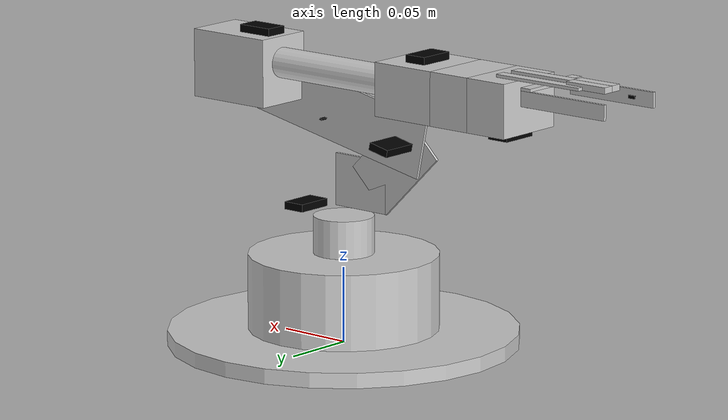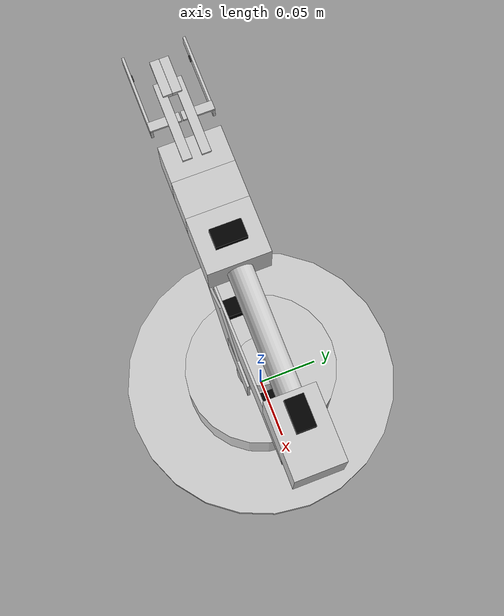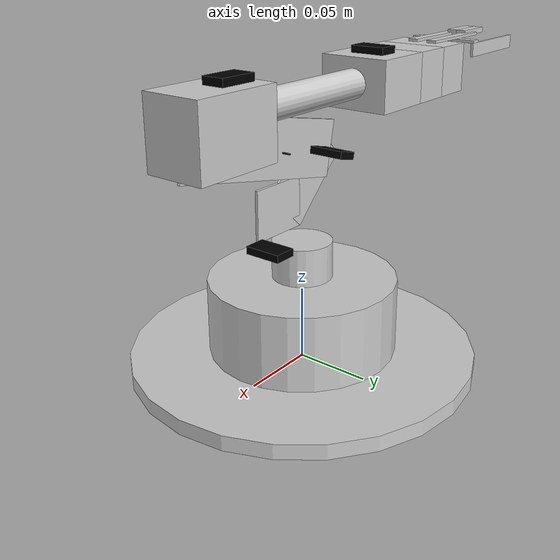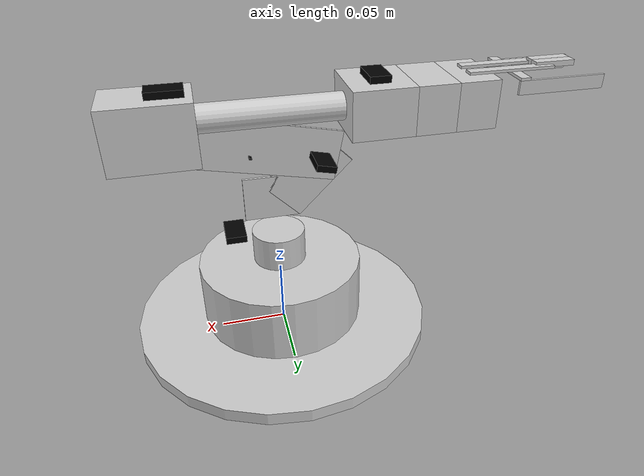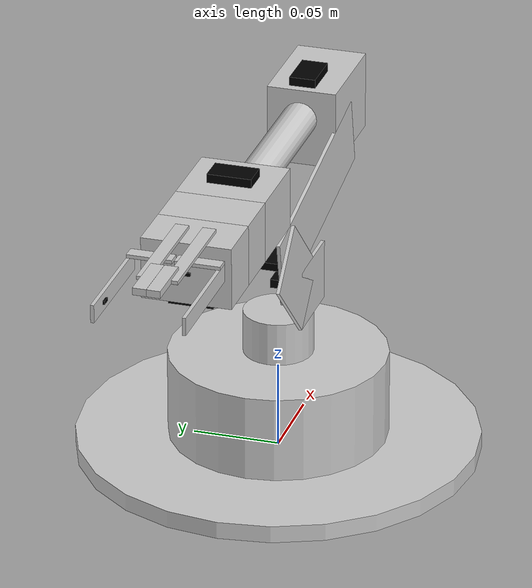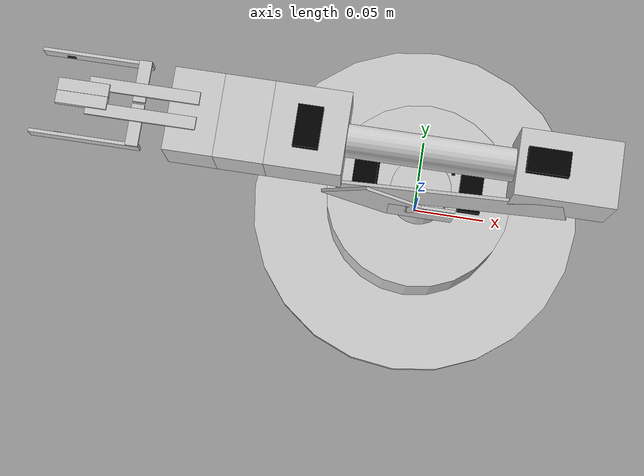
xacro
<?xml version="1.0" ?>
<!-- |    This document was autogenerated by xacro from /home/nastya/catkin_ws/src/digital_twin/description/urdf/for_assistant.xacro | -->
<!-- |    EDITING THIS FILE BY HAND IS NOT RECOMMENDED                                 | -->
<robot name="robot">
    <!-- добавление цветов -->
    <material name="grey">
        <color rgba="0.5 0.5 0.5 1" />
    </material>
    <material name="white">
        <color rgba="1 1 1 1" />
    </material>
    <material name="light_grey">
        <color rgba="0.8 0.8 0.8 1" />
    </material>
    <material name="black">
        <color rgba="0 0 0 1" />
    </material>
    <link name="world" />
    <!-- прикрепление неподвижного основания робота к миру-->
    <joint name="fixed" type="fixed">
        <parent link="world" />
        <child link="base1_link" />
    </joint>
    <!-- base1_link — неподвижное звено основания, находится дальше от link1 -->
    <link name="base1_link">
        <collision>
            <origin rpy="0 0 0" xyz="0 0 0.005" />
            <geometry>
                <cylinder length="0.01" radius="0.115" />
            </geometry>
        </collision>
        <visual>
            <origin rpy="0 0 0" xyz="0 0 0.005" />
            <geometry>
                <cylinder length="0.01" radius="0.115" />
            </geometry>
            <material name="light_grey" />
        </visual>

<inertial>
            <mass value="4" />
            <inertia ixx="1.0" ixy="0.0" ixz="0.0" iyy="1.0" iyz="0.0" izz="1.0" />
        </inertial>

    </link>
    <!-- base2_link — неподвижное звено основания, находится ближе к link1 -->
    <link name="base2_link">
        <collision>
            <geometry>
                <cylinder length="0.05" radius="0.0625" />
            </geometry>
        </collision>
        <visual>
            <geometry>
                <cylinder length="0.05" radius="0.0625" />
            </geometry>
            <material name="light_grey" />
        </visual>

<inertial>
            <mass value="2" />
            <inertia ixx="1.0" ixy="0.0" ixz="0.0" iyy="1.0" iyz="0.0" izz="1.0" />
        </inertial>

    </link>
    <!-- base1_to_base2 — фиксированное соединение -->
    <joint name="base1_to_base2" type="fixed">
        <parent link="base1_link" />
        <child link="base2_link" />
        <origin rpy="0 0 0" xyz="0 0 0.035" />
    </joint>
    <!-- link1 — звено, которое осуществляет поворот основания манипулятора влево/вправо -->
    <link name="link1">
        <collision>
            <geometry>
                <cylinder length="0.025" radius="0.02" />
            </geometry>
        </collision>
        <visual>
            <geometry>
                <cylinder length="0.025" radius="0.02" />
            </geometry>
            <material name="light_grey" />
        </visual>

<inertial>
            <mass value="1e-05" />
            <inertia ixx="1.0" ixy="0.0" ixz="0.0" iyy="1.0" iyz="0.0" izz="1.0" />
        </inertial>

    </link>
    <!-- base2_to_link1 — подвижное соединение -->
    <joint name="base2_to_link1" type="revolute">
        <parent link="base2_link" />
        <child link="link1" />
        <origin rpy="0 0 0" xyz="0 0 0.037500000000000006" />
        <axis xyz="0 0 1" />
        <limit effort="0.245166" lower="-1.57" upper="1.57" velocity="3.15" />
        <dynamics damping="0.0" friction="0.0" />
    </joint>
    <!-- imu_block1 — внешняя часть imu-датчика, которая находится рядом с link1 -->
    <link name="imu_block1">
        <collision>
            <origin rpy="0 0 0" xyz="0 0 0" />
            <geometry>
                <box size="0.015 0.025 0.005" />
            </geometry>
        </collision>
        <visual>
            <origin rpy="0 0 0" xyz="0 0 0" />
            <geometry>
                <box size="0.015 0.025 0.005" />
            </geometry>
            <material name="black" />
        </visual>

<inertial>
            <mass value="1e-05" />
            <inertia ixx="1.0" ixy="0.0" ixz="0.0" iyy="1.0" iyz="0.0" izz="1.0" />
        </inertial>

    </link>
    <!-- link1_to_imu_block1 — фиксированное соединение -->
    <joint name="link1_to_imu_block1" type="fixed">
        <parent link="link1" />
        <child link="imu_block1" />
        <origin rpy="0 0 0" xyz="0.0325 0 0.015000000000000001" />
    </joint>
    <!-- for_link2_1 — неподвижное звено, которое находится ближе к link1-->
    <link name="for_link2_1">
        <collision>
            <geometry>
                <box size="0.0425 0.002 0.035" />
            </geometry>
        </collision>
        <visual>
            <geometry>
                <box size="0.0425 0.002 0.035" />
            </geometry>
            <material name="light_grey" />
        </visual>

<inertial>
            <mass value="1e-05" />
            <inertia ixx="1.0" ixy="0.0" ixz="0.0" iyy="1.0" iyz="0.0" izz="1.0" />
        </inertial>

    </link>
    <!-- link1_to_for_link2_1 — фиксированное соединение -->
    <joint name="link1_to_for_link2_1" type="fixed">
        <parent link="link1" />
        <child link="for_link2_1" />
        <origin rpy="0 0 0" xyz="0.00125 -0.019 0.030000000000000002" />
    </joint>
    <!-- for_link2_2 — неподвижное звено, которое находится ближе к link2 -->
    <link name="for_link2_2">
        <collision>
            <geometry>
                <box size="0.06 0.002 0.04" />
            </geometry>
        </collision>
        <visual>
            <geometry>
                <box size="0.06 0.002 0.04" />
            </geometry>
            <material name="light_grey" />
        </visual>

<inertial>
            <mass value="1e-05" />
            <inertia ixx="1.0" ixy="0.0" ixz="0.0" iyy="1.0" iyz="0.0" izz="1.0" />
        </inertial>

    </link>
    <!-- for_link2_1_to_for_link2_2 — фиксированное соединение -->
    <joint name="for_link2_1_to_for_link2_2" type="fixed">
        <parent link="for_link2_1" />
        <child link="for_link2_2" />
        <origin rpy="0 0.7854 0" xyz="-0.028749999999999998 0 0.0175" />
    </joint>
    <!-- link2 — звено, которое осуществляет подъем/спуск конструкции ближе к основанию -->
    <link name="link2">
        <collision>
            <origin rpy="0 -0.9854 0" xyz="0.029500000000000002 0 0.046" />
            <geometry>
                <box size="0.14 0.002 0.04" />
            </geometry>
        </collision>
        <visual>
            <origin rpy="0 -0.9854 0" xyz="0.029500000000000002 0 0.046" />
            <geometry>
                <box size="0.14 0.002 0.04" />
            </geometry>
            <material name="light_grey" />
        </visual>

<inertial>
            <mass value="1e-05" />
            <inertia ixx="1.0" ixy="0.0" ixz="0.0" iyy="1.0" iyz="0.0" izz="1.0" />
        </inertial>

    </link>
    <!-- for_link2_to_link2 — подвижное соединение -->
    <joint name="for_link2_2_to_link2" type="revolute">
        <parent link="for_link2_2" />
        <child link="link2" />
        <origin rpy="0 0 0" xyz="-0.017 0.002 0.004" />
        <axis xyz="0 1 0" />
        <limit effort="0.245166" lower="-3.14" upper="0" velocity="3.15" />
        <dynamics damping="0.0" friction="0.0" />
    </joint>
    <!-- imu_block2 — внешняя часть imu-датчика, которая находится на link2 -->
    <link name="imu_block2">
        <collision>
            <origin rpy="0 0 0" xyz="0 0 0" />
            <geometry>
                <box size="0.015 0.025 0.005" />
            </geometry>
        </collision>
        <visual>
            <origin rpy="0 0 0" xyz="0 0 0" />
            <geometry>
                <box size="0.015 0.025 0.005" />
            </geometry>
            <material name="black" />
        </visual>

<inertial>
            <mass value="1e-05" />
            <inertia ixx="1.0" ixy="0.0" ixz="0.0" iyy="1.0" iyz="0.0" izz="1.0" />
        </inertial>

    </link>
    <!-- link2_to_imu_block2 — фиксированное соединение -->
    <joint name="link2_to_imu_block2" type="fixed">
        <parent link="link2" />
        <child link="imu_block2" />
        <origin rpy="0 5.280909090909091 0" xyz="0 0.013500000000000002 0" />
    </joint>
    <!-- laser1 — внешняя часть лазерного дальномера, которая находится на link2 -->
    <link name="laser1">
        <collision>
            <origin rpy="0 0 0" xyz="0 0 0" />
            <geometry>
                <box size="0.001 0.005 0.002" />
            </geometry>
        </collision>
        <visual>
            <origin rpy="0 0 0" xyz="0 0 0" />
            <geometry>
                <box size="0.001 0.005 0.002" />
            </geometry>
            <material name="black" />
        </visual>

<inertial>
            <mass value="1e-05" />
            <inertia ixx="1.0" ixy="0.0" ixz="0.0" iyy="1.0" iyz="0.0" izz="1.0" />
        </inertial>

    </link>
    <!-- link2_to_laser1 — фиксированное соединение -->
    <joint name="link2_to_laser1" type="fixed">
        <parent link="link2" />
        <child link="laser1" />
        <origin rpy="0 3.710909090909091 0" xyz="0.029500000000000002 0.018000000000000002 0.046" />
    </joint>
    <!-- link3 — звено, которое осуществляет подъем/спуск конструкции ближе к захвату -->
    <link name="link3">
        <collision>
            <origin rpy="0 0 0" xyz="0 0.019 0.015" />
            <geometry>
                <box size="0.06 0.04 0.045" />
            </geometry>
        </collision>
        <visual>
            <origin rpy="0 0 0" xyz="0 0.019 0.015" />
            <geometry>
                <box size="0.06 0.04 0.045" />
            </geometry>
            <material name="light_grey" />
        </visual>

<inertial>
            <mass value="1e-05" />
            <inertia ixx="1.0" ixy="0.0" ixz="0.0" iyy="1.0" iyz="0.0" izz="1.0" />
        </inertial>

    </link>
    <!-- link2_to_link3 — подвижное соединение -->
    <joint name="link2_to_link3" type="revolute">
        <parent link="link2" />
        <child link="link3" />
        <origin rpy="0 -0.7854 0" xyz="0.065 0 0.1" />
        <axis xyz="0 1 0" />
        <limit effort="0.245166" lower="0" upper="3.355" velocity="3.15" />
        <dynamics damping="0.0" friction="0.0" />
    </joint>
    <!-- imu_block3 — внешняя часть imu-датчика, которая находится на link3 -->
    <link name="imu_block3">
        <collision>
            <origin rpy="0 0 0" xyz="0 0 0" />
            <geometry>
                <box size="0.025 0.015 0.005" />
            </geometry>
        </collision>
        <visual>
            <origin rpy="0 0 0" xyz="0 0 0" />
            <geometry>
                <box size="0.025 0.015 0.005" />
            </geometry>
            <material name="black" />
        </visual>

<inertial>
            <mass value="1e-05" />
            <inertia ixx="1.0" ixy="0.0" ixz="0.0" iyy="1.0" iyz="0.0" izz="1.0" />
        </inertial>

    </link>
    <!-- link3_to_imu_block3 — фиксированное соединение -->
    <joint name="link3_to_imu_block3" type="fixed">
        <parent link="link3" />
        <child link="imu_block3" />
        <origin rpy="0 0 0" xyz="-0.0125 0.02 0.04" />
    </joint>
    <!-- link4 — звено, которое осуществляет поворот захвата влево/вправо -->
    <link name="link4">
        <collision>
            <origin rpy="0 -1.57 0" xyz="0 0 0" />
            <geometry>
                <cylinder length="0.1" radius="0.01" />
            </geometry>
        </collision>
        <visual>
            <origin rpy="0 -1.57 0" xyz="0 0 0" />
            <geometry>
                <cylinder length="0.1" radius="0.01" />
            </geometry>
            <material name="light_grey" />
        </visual>

<inertial>
            <mass value="1e-05" />
            <inertia ixx="1.0" ixy="0.0" ixz="0.0" iyy="1.0" iyz="0.0" izz="1.0" />
        </inertial>

    </link>
    <!-- link3_to_link4 — подвижное соединение -->
    <joint name="link3_to_link4" type="revolute">
        <parent link="link3" />
        <child link="link4" />
        <origin rpy="0 0 0" xyz="-0.08 0.02 0.02" />
        <axis xyz="1 0 0" />
        <limit effort="0.245166" lower="-1.57" upper="1.57" velocity="3.15" />
        <dynamics damping="0.0" friction="0.0" />
    </joint>
    <!-- for_link5_1 — неподвижное звено, которое находится рядом с link5 ближе к основанию -->
    <link name="for_link5_1">
        <collision>
            <geometry>
                <box size="0.0455 0.05 0.035" />
            </geometry>
        </collision>
        <visual>
            <geometry>
                <box size="0.0455 0.05 0.035" />
            </geometry>
            <material name="light_grey" />
        </visual>

<inertial>
            <mass value="1e-05" />
            <inertia ixx="1.0" ixy="0.0" ixz="0.0" iyy="1.0" iyz="0.0" izz="1.0" />
        </inertial>

    </link>
    <!-- link4_to_for_link5_1 — фиксированное соединение -->
    <joint name="link4_to_for_link5_1" type="fixed">
        <parent link="link4" />
        <child link="for_link5_1" />
        <origin rpy="0 0 0" xyz="-0.07275000000000001 0 0" />
    </joint>
    <!-- imu_block4 — внешняя часть imu-датчика, которая находится рядом с link5 ближе к основанию -->
    <link name="imu_block4">
        <collision>
            <origin rpy="0 0 0" xyz="0 0 0" />
            <geometry>
                <box size="0.015 0.025 0.005" />
            </geometry>
        </collision>
        <visual>
            <origin rpy="0 0 0" xyz="0 0 0" />
            <geometry>
                <box size="0.015 0.025 0.005" />
            </geometry>
            <material name="black" />
        </visual>

<inertial>
            <mass value="1e-05" />
            <inertia ixx="1.0" ixy="0.0" ixz="0.0" iyy="1.0" iyz="0.0" izz="1.0" />
        </inertial>

    </link>
    <!-- for_link5_1_to_imu_block4 — фиксированное соединение -->
    <joint name="for_link5_1_to_imu_block4" type="fixed">
        <parent link="for_link5_1" />
        <child link="imu_block4" />
        <origin rpy="0 0 0" xyz="0 0 0.02" />
    </joint>
    <!-- link5 —  звено, которое осуществляет движение захвата вверх/вниз -->
    <link name="link5">
        <collision>
            <origin rpy="0 0 0" xyz="-0.014875 0 0" />
            <geometry>
                <box size="0.02975 0.05 0.035" />
            </geometry>
        </collision>
        <visual>
            <origin rpy="0 0 0" xyz="-0.014875 0 0" />
            <geometry>
                <box size="0.02975 0.05 0.035" />
            </geometry>
            <material name="light_grey" />
        </visual>

<inertial>
            <mass value="1e-05" />
            <inertia ixx="1.0" ixy="0.0" ixz="0.0" iyy="1.0" iyz="0.0" izz="1.0" />
        </inertial>

    </link>
    <!-- for_link5_1_to_link5 — подвижное соединение -->
    <joint name="for_link5_1_to_link5" type="revolute">
        <parent link="for_link5_1" />
        <child link="link5" />
        <origin rpy="0 0 0" xyz="-0.02275 0 0" />
        <axis xyz="0 1 0" />
        <limit effort="0.245166" lower="-1.57" upper="1.57" velocity="3.15" />
        <dynamics damping="0.0" friction="0.0" />
    </joint>
    <!-- for_link5_2 — неподвижное звено, которое находится рядом с link5 ближе к захвату-->
    <link name="for_link5_2">
        <collision>
            <geometry>
                <box size="0.02975 0.05 0.035" />
            </geometry>
        </collision>
        <visual>
            <geometry>
                <box size="0.02975 0.05 0.035" />
            </geometry>
            <material name="light_grey" />
        </visual>

<inertial>
            <mass value="1e-05" />
            <inertia ixx="1.0" ixy="0.0" ixz="0.0" iyy="1.0" iyz="0.0" izz="1.0" />
        </inertial>

    </link>
    <!-- link5_to_for_link5_2 — фиксированное соединение -->
    <joint name="link5_to_for_link5_2" type="fixed">
        <parent link="link5" />
        <child link="for_link5_2" />
        <origin rpy="0 0 0" xyz="-0.044625 0 0" />
    </joint>
    <!-- imu_block5 — внешняя часть imu-датчика, которая находится рядом с link5 ближе к захвату -->
    <link name="imu_block5">
        <collision>
            <origin rpy="0 0 0" xyz="0 0 0" />
            <geometry>
                <box size="0.015 0.025 0.005" />
            </geometry>
        </collision>
        <visual>
            <origin rpy="0 0 0" xyz="0 0 0" />
            <geometry>
                <box size="0.015 0.025 0.005" />
            </geometry>
            <material name="black" />
        </visual>

<inertial>
            <mass value="1e-05" />
            <inertia ixx="1.0" ixy="0.0" ixz="0.0" iyy="1.0" iyz="0.0" izz="1.0" />
        </inertial>

    </link>
    <!-- for_link5_2_to_imu_block5 — фиксированное соединение -->
    <joint name="for_link5_2_to_imu_block5" type="fixed">
        <parent link="for_link5_2" />
        <child link="imu_block5" />
        <origin rpy="0 0 0" xyz="0 0 -0.02" />
    </joint>
    <!-- laser4 — внешняя часть лазерного дальномера, которая находится рядом с link5-->
    <link name="laser4">
        <collision>
            <geometry>
                <box size="0.001 0.005 0.002" />
            </geometry>
        </collision>
        <visual>
            <geometry>
                <box size="0.001 0.005 0.002" />
            </geometry>
            <material name="black" />
        </visual>

<inertial>
            <mass value="1e-05" />
            <inertia ixx="1.0" ixy="0.0" ixz="0.0" iyy="1.0" iyz="0.0" izz="1.0" />
        </inertial>

    </link>
    <!-- for_link5_2_to_laser4 — фиксированное соединение -->
    <joint name="for_link5_2_to_laser4" type="fixed">
        <parent link="for_link5_2" />
        <child link="laser4" />
        <origin rpy="0 3.14 0" xyz="-0.015375 0 0" />
    </joint>
    <!--
  ______________________ Захват_________________________
  -->
    <!-- right_finger — правый палец захвата -->
    <link name="right_finger">
        <collision>
            <origin rpy="0 0 0" xyz="-0.03 0 0" />
            <geometry>
                <box size="0.065 0.0075 0.002" />
            </geometry>
        </collision>
        <visual>
            <origin rpy="0 0 0" xyz="-0.03 0 0" />
            <geometry>
                <box size="0.065 0.0075 0.002" />
            </geometry>
            <material name="light_grey" />
        </visual>

<inertial>
            <mass value="1e-05" />
            <inertia ixx="1.0" ixy="0.0" ixz="0.0" iyy="1.0" iyz="0.0" izz="1.0" />
        </inertial>

    </link>
    <!-- for_link5_2_to_right_finger — подвижное соединение -->
    <joint name="for_link5_2_to_right_finger" type="revolute">
        <parent link="for_link5_2" />
        <child link="right_finger" />
        <origin rpy="0 0 0" xyz="0 0.0075250000000000004 0.018500000000000003" />
        <axis xyz="0 0 1" />
        <limit effort="0.980665" lower="-1.57" upper="0" velocity="3.15" />
        <dynamics damping="0.0" friction="0.0" />
    </joint>
    <!-- right_tip — конец правого пальза захвата -->
    <link name="right_tip">
        <collision>
            <geometry>
                <box size="0.03 0.0075 0.004" />
            </geometry>
        </collision>
        <visual>
            <geometry>
                <box size="0.03 0.0075 0.004" />
            </geometry>
            <material name="light_grey" />
        </visual>

<inertial>
            <mass value="1e-05" />
            <inertia ixx="1.0" ixy="0.0" ixz="0.0" iyy="1.0" iyz="0.0" izz="1.0" />
        </inertial>

    </link>
    <!-- right_finger_to_right_tip — фиксированное соединение -->
    <joint name="right_finger_to_right_tip" type="fixed">
        <parent link="right_finger" />
        <child link="right_tip" />
        <origin rpy="0 0 0" xyz="-0.065 -0.00375 0.001" />
    </joint>
    <!-- left_finger — левый палец захвата -->
    <link name="left_finger">
        <collision>
            <origin rpy="0 0 0" xyz="-0.03 0 0" />
            <geometry>
                <box size="0.065 0.0075 0.002" />
            </geometry>
        </collision>
        <visual>
            <origin rpy="0 0 0" xyz="-0.03 0 0" />
            <geometry>
                <box size="0.065 0.0075 0.002" />
            </geometry>
            <material name="light_grey" />
        </visual>

<inertial>
            <mass value="1e-05" />
            <inertia ixx="1.0" ixy="0.0" ixz="0.0" iyy="1.0" iyz="0.0" izz="1.0" />
        </inertial>

    </link>
    <!-- for_link5_2_to_left_finger — подвижное соединение -->
    <joint name="for_link5_2_to_left_finger" type="revolute">
        <parent link="for_link5_2" />
        <child link="left_finger" />
        <origin rpy="0 0 0" xyz="0 -0.0075250000000000004 0.018500000000000003" />
        <axis xyz="0 0 1" />
        <limit effort="0.980665" lower="0" upper="1.57" velocity="3.14" />
        <dynamics damping="0.0" friction="0.0" />
    </joint>
    <!-- left_tip — конец левого пальца захвата-->
    <link name="left_tip">
        <collision>
            <geometry>
                <box size="0.03 0.0075 0.004" />
            </geometry>
        </collision>
        <visual>
            <geometry>
                <box size="0.03 0.0075 0.004" />
            </geometry>
            <material name="light_grey" />
        </visual>

<inertial>
            <mass value="1e-05" />
            <inertia ixx="1.0" ixy="0.0" ixz="0.0" iyy="1.0" iyz="0.0" izz="1.0" />
        </inertial>

    </link>
    <!-- left_finger_to_left_tip — фиксированное соединение -->
    <joint name="left_finger_to_left_tip" type="fixed">
        <parent link="left_finger" />
        <child link="left_tip" />
        <origin rpy="0 0 0" xyz="-0.065 0.00375 0.001" />
    </joint>
    <!-- for_laser_right_1 — блок для laser3 ближе к right_finger-->
    <link name="for_laser_right_1">
        <collision>
            <geometry>
                <box size="0.0075 0.025 0.002" />
            </geometry>
        </collision>
        <visual>
            <geometry>
                <box size="0.0075 0.025 0.002" />
            </geometry>
            <material name="light_grey" />
        </visual>

<inertial>
            <mass value="1e-05" />
            <inertia ixx="1.0" ixy="0.0" ixz="0.0" iyy="1.0" iyz="0.0" izz="1.0" />
        </inertial>

    </link>
    <!-- right_finger_to_for_laser_right_1 — фиксированное соединение -->
    <joint name="right_finger_to_for_laser_right_1" type="fixed">
        <parent link="right_finger" />
        <child link="for_laser_right_1" />
        <origin rpy="0 0 0" xyz="-0.0325 0.005625 -0.002" />
    </joint>
    <!-- for_laser_right_2 — блок для laser3 дальше от right_finger -->
    <link name="for_laser_right_2">
        <collision>
            <geometry>
                <box size="0.065 0.002 0.01" />
            </geometry>
        </collision>
        <visual>
            <geometry>
                <box size="0.065 0.002 0.01" />
            </geometry>
            <material name="light_grey" />
        </visual>

<inertial>
            <mass value="1e-05" />
            <inertia ixx="1.0" ixy="0.0" ixz="0.0" iyy="1.0" iyz="0.0" izz="1.0" />
        </inertial>

    </link>
    <!-- for_laser_right_1_to_for_laser_right_2 — фиксированное соединение -->
    <joint name="for_laser_right_1_to_for_laser_right_2" type="fixed">
        <parent link="for_laser_right_1" />
        <child link="for_laser_right_2" />
        <origin rpy="0 0 0" xyz="-0.02875 0.0115 -0.006" />
    </joint>
    <!-- laser3 — внешняя часть лазерного дальномера, которая находится рядом с right_finger -->
    <link name="laser3">
        <collision>
            <geometry>
                <box size="0.001 0.005 0.002" />
            </geometry>
        </collision>
        <visual>
            <geometry>
                <box size="0.001 0.005 0.002" />
            </geometry>
            <material name="black" />
        </visual>

<inertial>
            <mass value="1e-05" />
            <inertia ixx="1.0" ixy="0.0" ixz="0.0" iyy="1.0" iyz="0.0" izz="1.0" />
        </inertial>

    </link>
    <!-- for_laser_right_2_to_laser3 — фиксированное соединение -->
    <joint name="for_laser_right_2_to_laser3" type="fixed">
        <parent link="for_laser_right_2" />
        <child link="laser3" />
        <origin rpy="0 0 -1.57" xyz="-0.01625 -0.0015 0" />
    </joint>
    <!-- for_laser_left_1 — блок для laser4 ближе к left_finger -->
    <link name="for_laser_left_1">
        <collision>
            <geometry>
                <box size="0.0075 0.025 0.002" />
            </geometry>
        </collision>
        <visual>
            <geometry>
                <box size="0.0075 0.025 0.002" />
            </geometry>
            <material name="light_grey" />
        </visual>

<inertial>
            <mass value="1e-05" />
            <inertia ixx="1.0" ixy="0.0" ixz="0.0" iyy="1.0" iyz="0.0" izz="1.0" />
        </inertial>

    </link>
    <!-- left_finger_to_for_laser_left_1 — фиксированное соединение -->
    <joint name="left_finger_to_for_laser_left_1" type="fixed">
        <parent link="left_finger" />
        <child link="for_laser_left_1" />
        <origin rpy="0 0 0" xyz="-0.0325 -0.005625 -0.002" />
    </joint>
    <!-- for_laser_left_2 — блок для laser4 дальше от left_finger-->
    <link name="for_laser_left_2">
        <collision>
            <geometry>
                <box size="0.065 0.002 0.01" />
            </geometry>
        </collision>
        <visual>
            <geometry>
                <box size="0.065 0.002 0.01" />
            </geometry>
            <material name="light_grey" />
        </visual>

<inertial>
            <mass value="1e-05" />
            <inertia ixx="1.0" ixy="0.0" ixz="0.0" iyy="1.0" iyz="0.0" izz="1.0" />
        </inertial>

    </link>
    <!-- for_laser_left_1_to_for_laser_left_2 — фиксированное соединение -->
    <joint name="for_laser_left_1_to_for_laser_left_2" type="fixed">
        <parent link="for_laser_left_1" />
        <child link="for_laser_left_2" />
        <origin rpy="0 0 0" xyz="-0.02875 -0.0115 -0.006" />
    </joint>
    <!-- laser2 — внешняя часть лазерного дальномера, которая находится рядом с left_finger -->
    <link name="laser2">
        <collision>
            <geometry>
                <box size="0.001 0.005 0.002" />
            </geometry>
        </collision>
        <visual>
            <geometry>
                <box size="0.001 0.005 0.002" />
            </geometry>
            <material name="black" />
        </visual>

<inertial>
            <mass value="1e-05" />
            <inertia ixx="1.0" ixy="0.0" ixz="0.0" iyy="1.0" iyz="0.0" izz="1.0" />
        </inertial>

    </link>
    <!-- for_laser_left_2_to_laser2 — фиксированное соединение -->
    <joint name="for_laser_left_2_to_laser2" type="fixed">
        <parent link="for_laser_left_2" />
        <child link="laser2" />
        <origin rpy="0 0 1.57" xyz="-0.01625 0.0015 0" />
    </joint>
    <!--
  ____________________________Датчики____________________________
   -->
    <!-- laser1 — лазерный дальномер, который находится на link2 -->
    <gazebo reference="laser1">
        <sensor name="laser1" type="ray">
            <pose>0 0 0 0 0 0</pose>
            <visualize>true</visualize>
            <update_rate>10</update_rate>
            <ray>
                <scan>
                    <horizontal>
                        <samples>1</samples>
                        <resolution>1</resolution>
                        <min_angle>0.0</min_angle>
                        <max_angle>0.0</max_angle>
                    </horizontal>
                </scan>
                <range>
                    <min>0.001</min>
                    <max>2.0</max>
                    <resolution>0.01</resolution>
                </range>
            </ray>
            <plugin filename="libgazebo_ros_laser.so" name="gazebo_ros_head_hokuyo_controller">
                <topicName>laser1/scan</topicName>
                <frameName>laser1</frameName>
            </plugin>
        </sensor>
    </gazebo>
    <!-- laser3 — лазерный дальномер, который находится рядом с right_finger -->
    <gazebo reference="laser3">
        <sensor name="laser3" type="ray">
            <pose>0 0 0 0 0 0</pose>
            <visualize>true</visualize>
            <update_rate>10</update_rate>
            <ray>
                <scan>
                    <horizontal>
                        <samples>1</samples>
                        <resolution>1</resolution>
                        <min_angle>0.0</min_angle>
                        <max_angle>0.0</max_angle>
                    </horizontal>
                </scan>
                <range>
                    <min>0.001</min>
                    <max>2.0</max>
                    <resolution>0.01</resolution>
                </range>
            </ray>
            <plugin filename="libgazebo_ros_laser.so" name="gazebo_ros_head_hokuyo_controller">
                <topicName>laser3/scan</topicName>
                <frameName>laser3</frameName>
            </plugin>
        </sensor>
    </gazebo>
    <!-- laser2 — лазерный дальномер, который находится рядом с left_finger -->
    <gazebo reference="laser2">
        <sensor name="laser2" type="ray">
            <pose>0 0 0 0 0 0</pose>
            <visualize>true</visualize>
            <update_rate>10</update_rate>
            <ray>
                <scan>
                    <horizontal>
                        <samples>1</samples>
                        <resolution>1</resolution>
                        <min_angle>0.0</min_angle>
                        <max_angle>0.0</max_angle>
                    </horizontal>
                </scan>
                <range>
                    <min>0.001</min>
                    <max>2.0</max>
                    <resolution>0.01</resolution>
                </range>
            </ray>
            <plugin filename="libgazebo_ros_laser.so" name="gazebo_ros_head_hokuyo_controller">
                <topicName>laser2/scan</topicName>
                <frameName>laser2</frameName>
            </plugin>
        </sensor>
    </gazebo>
    <!-- laser4 — лазерный дальномер, который находится рядом с link5 -->
    <gazebo reference="laser4">
        <sensor name="laser4" type="ray">
            <pose>0 0 0 0 0 -1.57</pose>
            <visualize>true</visualize>
            <update_rate>10</update_rate>
            <ray>
                <scan>
                    <horizontal>
                        <samples>1</samples>
                        <resolution>1</resolution>
                        <min_angle>0.0</min_angle>
                        <max_angle>0.0</max_angle>
                    </horizontal>
                </scan>
                <range>
                    <min>0.001</min>
                    <max>2.0</max>
                    <resolution>0.01</resolution>
                </range>
            </ray>
            <plugin filename="libgazebo_ros_laser.so" name="gazebo_ros_head_hokuyo_controller">
                <topicName>laser4/scan</topicName>
                <frameName>laser4</frameName>
            </plugin>
        </sensor>
    </gazebo>
    <!-- imu1 — imu-датчик, который находится рядом с link1-->
    <gazebo>
        <plugin filename="libgazebo_ros_imu.so" name="imu_plugin">
            <topicName>imu1/data</topicName>
            <serviceName>imu1/service</serviceName>
            <bodyName>imu_block1</bodyName>
            <frameName>imu_block1</frameName>
            <rpyOffsets>0 0 0</rpyOffsets>
            <updateRate>10.0</updateRate>
            <alwaysOn>true</alwaysOn>
        </plugin>
    </gazebo>
    <!-- imu2 — imu-датчик, который находится на link2 -->
    <gazebo>
        <plugin filename="libgazebo_ros_imu.so" name="imu_plugin">
            <topicName>imu2/data</topicName>
            <serviceName>imu2/service</serviceName>
            <bodyName>imu_block2</bodyName>
            <frameName>imu_block2</frameName>
            <rpyOffsets>0 0 0</rpyOffsets>
            <updateRate>10.0</updateRate>
            <alwaysOn>true</alwaysOn>
        </plugin>
    </gazebo>
    <!-- imu3 — imu-датчик, который находится на link3-->
    <gazebo>
        <plugin filename="libgazebo_ros_imu.so" name="imu_plugin">
            <topicName>imu3/data</topicName>
            <serviceName>imu3/service</serviceName>
            <bodyName>imu_block3</bodyName>
            <frameName>imu_block3</frameName>
            <rpyOffsets>0 0 0</rpyOffsets>
            <updateRate>10.0</updateRate>
            <alwaysOn>true</alwaysOn>
        </plugin>
    </gazebo>
    <!-- imu4 — imu-датчик, который находится рядом с link5 ближе к основанию-->
    <gazebo>
        <plugin filename="libgazebo_ros_imu.so" name="imu_plugin">
            <topicName>imu4/data</topicName>
            <serviceName>imu4/service</serviceName>
            <bodyName>imu_block4</bodyName>
            <frameName>imu_block4</frameName>
            <rpyOffsets>0 0 0</rpyOffsets>
            <updateRate>10.0</updateRate>
            <alwaysOn>true</alwaysOn>
        </plugin>
    </gazebo>
    <!-- imu5 — imu-датчик, который находится рядом с link5 ближе к захвату-->
    <gazebo>
        <plugin filename="libgazebo_ros_imu.so" name="imu_plugin">
            <topicName>imu5/data</topicName>
            <serviceName>imu5/service</serviceName>
            <bodyName>imu_block5</bodyName>
            <frameName>imu_block5</frameName>
            <rpyOffsets>0 0 0</rpyOffsets>
            <updateRate>10.0</updateRate>
            <alwaysOn>true</alwaysOn>
        </plugin>
    </gazebo>
    <!-- подключение цветов gazebo -->
    <gazebo reference="imu1">
        <material>Gazebo/Black</material>
    </gazebo>
    <gazebo reference="imu2">
        <material>Gazebo/Black</material>
    </gazebo>
    <gazebo reference="imu3">
        <material>Gazebo/Black</material>
    </gazebo>
    <gazebo reference="imu4">
        <material>Gazebo/Black</material>
    </gazebo>
    <gazebo reference="imu5">
        <material>Gazebo/Black</material>
    </gazebo>
    <gazebo reference="laser1">
        <material>Gazebo/Black</material>
    </gazebo>
    <gazebo reference="laser2">
        <material>Gazebo/Black</material>
    </gazebo>
    <gazebo reference="laser3">
        <material>Gazebo/Black</material>
    </gazebo>
    <gazebo reference="laser4">
        <material>Gazebo/Black</material>
    </gazebo>

<transmission name="trans_base2_to_link1">
        <type>transmission_interface/SimpleTransmission</type>
        <joint name="base2_to_link1">
            <hardwareInterface>hardware_interface/PositionJointInterface</hardwareInterface>
        </joint>
        <actuator name="base2_to_link1_motor">
            <hardwareInterface>hardware_interface/PositionJointInterface</hardwareInterface>
            <mechanicalReduction>1</mechanicalReduction>
        </actuator>
    </transmission>
    <transmission name="trans_for_link2_2_to_link2">
        <type>transmission_interface/SimpleTransmission</type>
        <joint name="for_link2_2_to_link2">
            <hardwareInterface>hardware_interface/PositionJointInterface</hardwareInterface>
        </joint>
        <actuator name="for_link2_2_to_link2_motor">
            <hardwareInterface>hardware_interface/PositionJointInterface</hardwareInterface>
            <mechanicalReduction>1</mechanicalReduction>
        </actuator>
    </transmission>
    <transmission name="trans_link2_to_link3">
        <type>transmission_interface/SimpleTransmission</type>
        <joint name="link2_to_link3">
            <hardwareInterface>hardware_interface/PositionJointInterface</hardwareInterface>
        </joint>
        <actuator name="link2_to_link3_motor">
            <hardwareInterface>hardware_interface/PositionJointInterface</hardwareInterface>
            <mechanicalReduction>1</mechanicalReduction>
        </actuator>
    </transmission>
    <transmission name="trans_link3_to_link4">
        <type>transmission_interface/SimpleTransmission</type>
        <joint name="link3_to_link4">
            <hardwareInterface>hardware_interface/PositionJointInterface</hardwareInterface>
        </joint>
        <actuator name="link3_to_link4_motor">
            <hardwareInterface>hardware_interface/PositionJointInterface</hardwareInterface>
            <mechanicalReduction>1</mechanicalReduction>
        </actuator>
    </transmission>
    <transmission name="trans_for_link5_1_to_link5">
        <type>transmission_interface/SimpleTransmission</type>
        <joint name="for_link5_1_to_link5">
            <hardwareInterface>hardware_interface/PositionJointInterface</hardwareInterface>
        </joint>
        <actuator name="for_link5_1_to_link5_motor">
            <hardwareInterface>hardware_interface/PositionJointInterface</hardwareInterface>
            <mechanicalReduction>1</mechanicalReduction>
        </actuator>
    </transmission>
    <transmission name="trans_for_link5_2_to_right_finger">
        <type>transmission_interface/SimpleTransmission</type>
        <joint name="for_link5_2_to_right_finger">
            <hardwareInterface>hardware_interface/PositionJointInterface</hardwareInterface>
        </joint>
        <actuator name="for_link5_2_to_right_finger_motor">
            <hardwareInterface>hardware_interface/PositionJointInterface</hardwareInterface>
            <mechanicalReduction>1</mechanicalReduction>
        </actuator>
    </transmission>
    <transmission name="trans_for_link5_2_to_left_finger">
        <type>transmission_interface/SimpleTransmission</type>
        <joint name="for_link5_2_to_left_finger">
            <hardwareInterface>hardware_interface/PositionJointInterface</hardwareInterface>
        </joint>
        <actuator name="for_link5_2_to_left_finger_motor">
            <hardwareInterface>hardware_interface/PositionJointInterface</hardwareInterface>
            <mechanicalReduction>1</mechanicalReduction>
        </actuator>
    </transmission>
    <gazebo>
        <plugin name="gazebo_ros_control" filename="libgazebo_ros_control.so">
            <robotNamespace>/</robotNamespace>
        </plugin>
    </gazebo>

    <gazebo>
      <plugin name="gazebo_grasp_fix" filename="libgazebo_grasp_fix.so">
           <arm>
              <arm_name>robot_arm</arm_name>
              <palm_link>link5</palm_link>
              <gripper_link> left_finger </gripper_link>
              <gripper_link> right_finger </gripper_link>
           </arm>
          <forces_angle_tolerance>100</forces_angle_tolerance>
          <update_rate>4</update_rate>
          <grip_count_threshold>4</grip_count_threshold>
          <max_grip_count>8</max_grip_count>
          <release_tolerance>0.005</release_tolerance>
          <disable_collisions_on_attach>false</disable_collisions_on_attach>
          <contact_topic>__default_topic__</contact_topic>
       </plugin>
   </gazebo>
</robot>
